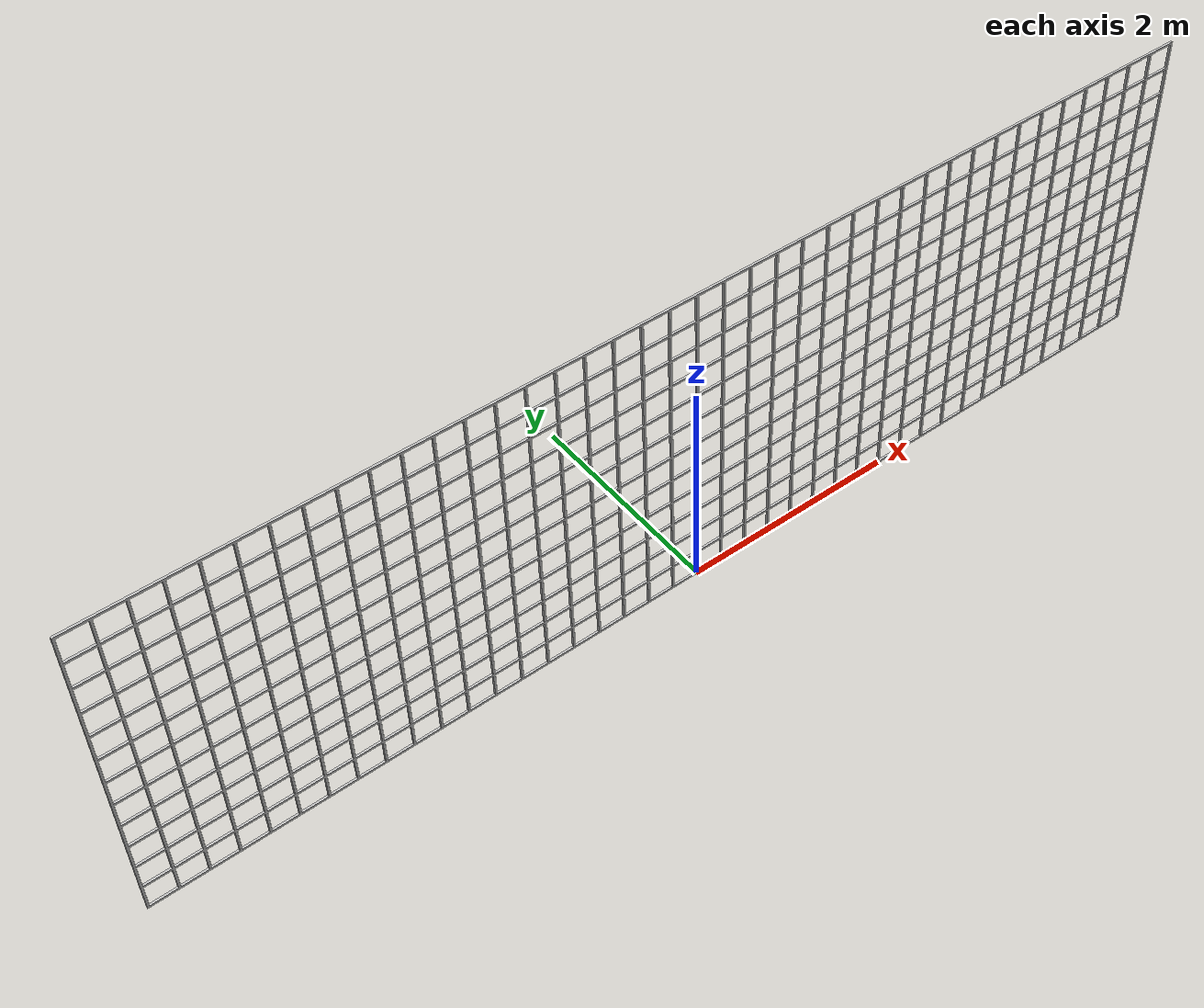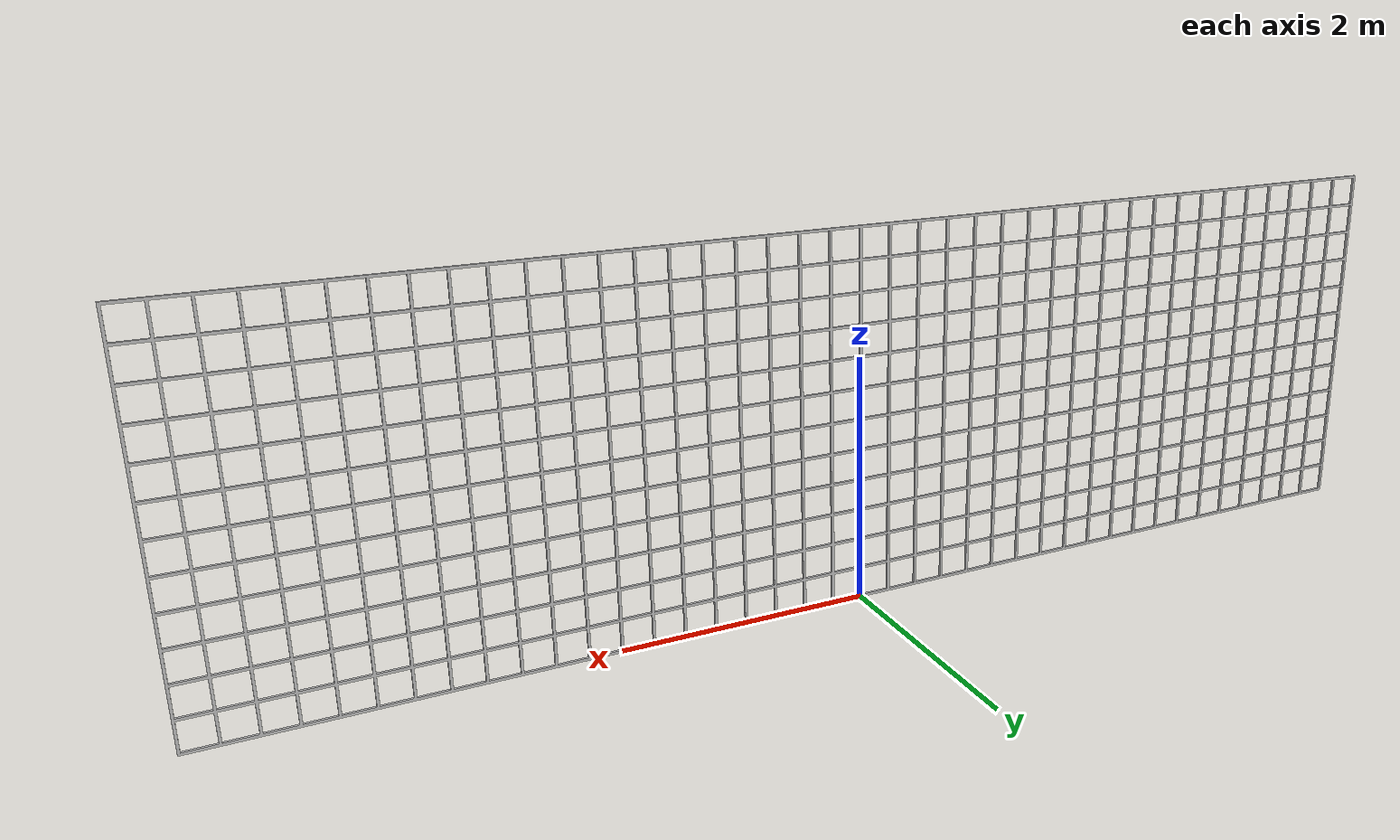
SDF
<?xml version="1.0"?>
<sdf version="1.6">
  <model name="wall_05">
    <pose>0 0 0 0 0 0</pose>
    <static>0</static>
    <link name="link">
      <inertial>
        <pose>0 0 1.501 0 0 0</pose>
        <mass>100</mass>
        <inertia>
          <ixx>1000000</ixx>
          <ixy>0</ixy>
          <ixz>0</ixz>
          <iyy>18064.33</iyy>
          <iyz>0</iyz>
          <izz>17637.50</izz>
        </inertia>
      </inertial>

       <collision name="collision">
        <geometry>
          <mesh>
            <uri>model://../meshes/wall_10.dae</uri>
          </mesh>
        </geometry>
      </collision>

      <visual name="visual">
        <geometry>
          <mesh>
            <uri>model://../meshes/wall_10.dae</uri>
          </mesh>
        </geometry>
      </visual>

    </link>
  </model>
</sdf>
